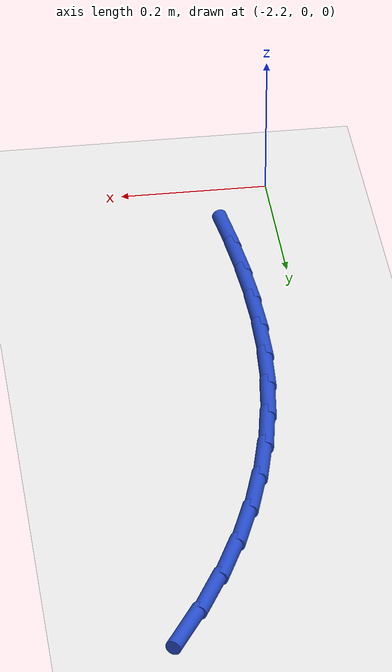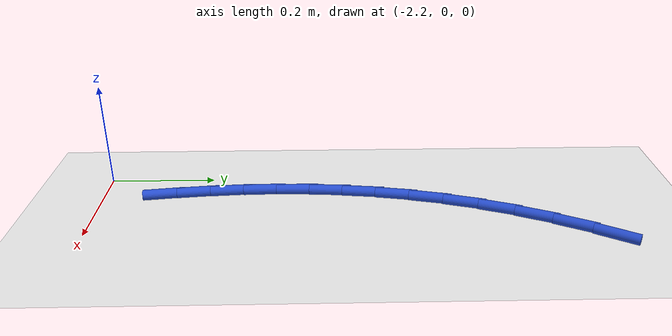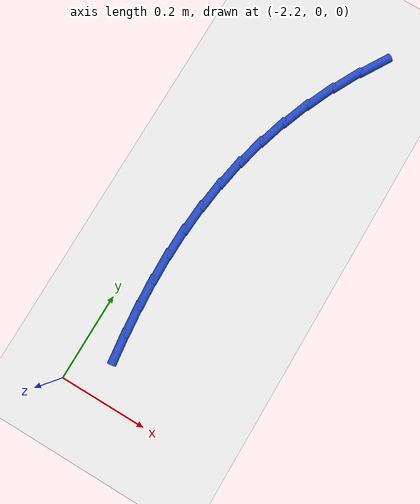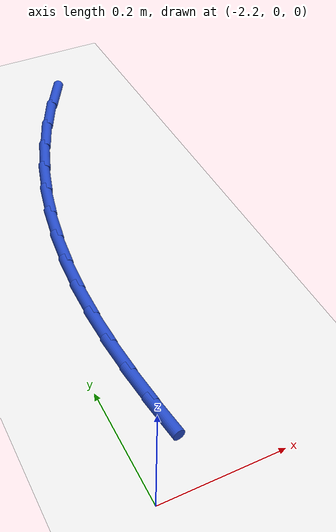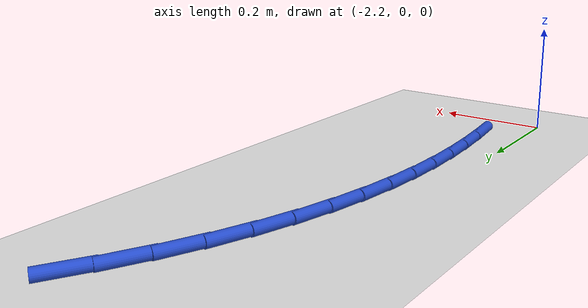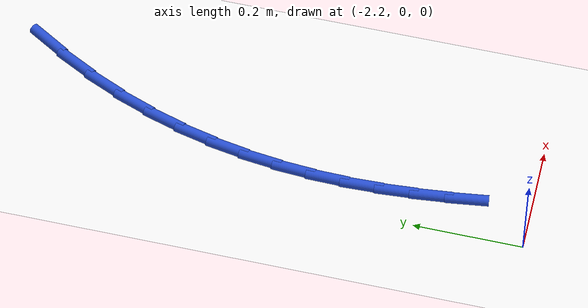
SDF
<sdf version="1.6">
 <world name="default">
  <model name="ground_plane">
   <static>1</static>
   <link name="link">
    <collision name="collision">
     <geometry><plane><normal>0 0 1</normal><size>100 100</size></plane></geometry>
     <surface><friction><ode><mu>100</mu><mu2>50</mu2></ode></friction></surface>
    </collision>
    <visual name="visual">
     <cast_shadows>0</cast_shadows>
     <geometry><plane><normal>0 0 1</normal><size>100 100</size></plane></geometry>
     <material>
      <script><uri>file://media/materials/scripts/gazebo.material</uri><name>Gazebo/WhiteGlow</name></script>
     </material>
    </visual>
   </link>
  </model>
  <model name="line">
   <link name="link_43">
    <pose>-1.968449058733681 0.9330394069545961 0.01 0 1.57 1.0332174432045451</pose>
    <collision name="collision">
     <geometry><cylinder><radius>0.01</radius><length>0.08</length></cylinder></geometry>
    </collision>
    <visual name="visual">
     <material>
      <script><name>Gazebo/Blue</name><uri>file://media/materials/scripts/gazebo.material</uri></script>
     </material>
     <geometry><cylinder><radius>0.01</radius><length>0.08</length></cylinder></geometry>
    </visual>
   </link>
   <link name="link_44">
    <pose>-2.00507745468464 0.8715971422046896 0.01 0 1.57 1.0960629056093787</pose>
    <collision name="collision">
     <geometry><cylinder><radius>0.01</radius><length>0.08</length></cylinder></geometry>
    </collision>
    <visual name="visual">
     <material>
      <script><name>Gazebo/Blue</name><uri>file://media/materials/scripts/gazebo.material</uri></script>
     </material>
     <geometry><cylinder><radius>0.01</radius><length>0.08</length></cylinder></geometry>
    </visual>
   </link>
   <link name="link_45">
    <pose>-2.0368845356291434 0.8097078445608016 0.01 0 1.57 1.1589928783862842</pose>
    <collision name="collision">
     <geometry><cylinder><radius>0.01</radius><length>0.08</length></cylinder></geometry>
    </collision>
    <visual name="visual">
     <material>
      <script><name>Gazebo/Blue</name><uri>file://media/materials/scripts/gazebo.material</uri></script>
     </material>
     <geometry><cylinder><radius>0.01</radius><length>0.08</length></cylinder></geometry>
    </visual>
   </link>
   <link name="link_46">
    <pose>-2.0640832647679095 0.7474364151682324 0.01 0 1.57 1.2214069919793855</pose>
    <collision name="collision">
     <geometry><cylinder><radius>0.01</radius><length>0.08</length></cylinder></geometry>
    </collision>
    <visual name="visual">
     <material>
      <script><name>Gazebo/Blue</name><uri>file://media/materials/scripts/gazebo.material</uri></script>
     </material>
     <geometry><cylinder><radius>0.01</radius><length>0.08</length></cylinder></geometry>
    </visual>
   </link>
   <link name="link_47">
    <pose>-2.0868866053016557 0.684847755172282 0.01 0 1.57 1.282720945095963</pose>
    <collision name="collision">
     <geometry><cylinder><radius>0.01</radius><length>0.08</length></cylinder></geometry>
    </collision>
    <visual name="visual">
     <material>
      <script><name>Gazebo/Blue</name><uri>file://media/materials/scripts/gazebo.material</uri></script>
     </material>
     <geometry><cylinder><radius>0.01</radius><length>0.08</length></cylinder></geometry>
    </visual>
   </link>
   <link name="link_48">
    <pose>-2.1055075204311025 0.6220067657182504 0.01 0 1.57 1.3423947966794585</pose>
    <collision name="collision">
     <geometry><cylinder><radius>0.01</radius><length>0.08</length></cylinder></geometry>
    </collision>
    <visual name="visual">
     <material>
      <script><name>Gazebo/Blue</name><uri>file://media/materials/scripts/gazebo.material</uri></script>
     </material>
     <geometry><cylinder><radius>0.01</radius><length>0.08</length></cylinder></geometry>
    </visual>
   </link>
   <link name="link_49">
    <pose>-2.120158973356967 0.5589783479514376 0.01 0 1.57 1.3999556250284204</pose>
    <collision name="collision">
     <geometry><cylinder><radius>0.01</radius><length>0.08</length></cylinder></geometry>
    </collision>
    <visual name="visual">
     <material>
      <script><name>Gazebo/Blue</name><uri>file://media/materials/scripts/gazebo.material</uri></script>
     </material>
     <geometry><cylinder><radius>0.01</radius><length>0.08</length></cylinder></geometry>
    </visual>
   </link>
   <link name="link_50">
    <pose>-2.131053927279969 0.4958274030171437 0.01 0 1.57 1.455012379056161</pose>
    <collision name="collision">
     <geometry><cylinder><radius>0.01</radius><length>0.08</length></cylinder></geometry>
    </collision>
    <visual name="visual">
     <material>
      <script><name>Gazebo/Blue</name><uri>file://media/materials/scripts/gazebo.material</uri></script>
     </material>
     <geometry><cylinder><radius>0.01</radius><length>0.08</length></cylinder></geometry>
    </visual>
   </link>
   <link name="link_51">
    <pose>-2.1384053454008267 0.43261883206066876 0.01 0 1.57 1.5072622827189366</pose>
    <collision name="collision">
     <geometry><cylinder><radius>0.01</radius><length>0.08</length></cylinder></geometry>
    </collision>
    <visual name="visual">
     <material>
      <script><name>Gazebo/Blue</name><uri>file://media/materials/scripts/gazebo.material</uri></script>
     </material>
     <geometry><cylinder><radius>0.01</radius><length>0.08</length></cylinder></geometry>
    </visual>
   </link>
   <link name="link_52">
    <pose>-2.14242619092026 0.36941753622731294 0.01 0 1.57 1.5564895457385501</pose>
    <collision name="collision">
     <geometry><cylinder><radius>0.01</radius><length>0.08</length></cylinder></geometry>
    </collision>
    <visual name="visual">
     <material>
      <script><name>Gazebo/Blue</name><uri>file://media/materials/scripts/gazebo.material</uri></script>
     </material>
     <geometry><cylinder><radius>0.01</radius><length>0.08</length></cylinder></geometry>
    </visual>
   </link>
   <link name="link_53">
    <pose>-2.1433294270389855 0.30628841666237605 0.01 0 1.57 -1.5395499838748834</pose>
    <collision name="collision">
     <geometry><cylinder><radius>0.01</radius><length>0.08</length></cylinder></geometry>
    </collision>
    <visual name="visual">
     <material>
      <script><name>Gazebo/Blue</name><uri>file://media/materials/scripts/gazebo.material</uri></script>
     </material>
     <geometry><cylinder><radius>0.01</radius><length>0.08</length></cylinder></geometry>
    </visual>
   </link>
   <link name="link_54">
    <pose>-2.141359329161401 0.24325842678232468 0.01 0 1.57 -1.5002051665246996</pose>
    <collision name="collision">
     <geometry><cylinder><radius>0.01</radius><length>0.08</length></cylinder></geometry>
    </collision>
    <visual name="visual">
     <material>
      <script><name>Gazebo/Blue</name><uri>file://media/materials/scripts/gazebo.material</uri></script>
     </material>
     <geometry><cylinder><radius>0.01</radius><length>0.08</length></cylinder></geometry>
    </visual>
   </link>
   <link name="link_55">
    <pose>-2.136899536417803 0.18018562301590926 0.01 0 1.57 -1.468053181684538</pose>
    <collision name="collision">
     <geometry><cylinder><radius>0.01</radius><length>0.08</length></cylinder></geometry>
    </collision>
    <visual name="visual">
     <material>
      <script><name>Gazebo/Blue</name><uri>file://media/materials/scripts/gazebo.material</uri></script>
     </material>
     <geometry><cylinder><radius>0.01</radius><length>0.08</length></cylinder></geometry>
    </visual>
   </link>
   <link name="link_56">
    <pose>-2.130372446409565 0.1168810898200071 0.01 0 1.57 -1.4432544522771131</pose>
    <collision name="collision">
     <geometry><cylinder><radius>0.01</radius><length>0.08</length></cylinder></geometry>
    </collision>
    <visual name="visual">
     <material>
      <script><name>Gazebo/Blue</name><uri>file://media/materials/scripts/gazebo.material</uri></script>
     </material>
     <geometry><cylinder><radius>0.01</radius><length>0.08</length></cylinder></geometry>
    </visual>
   </link>
  </model>
 </world>
</sdf>
